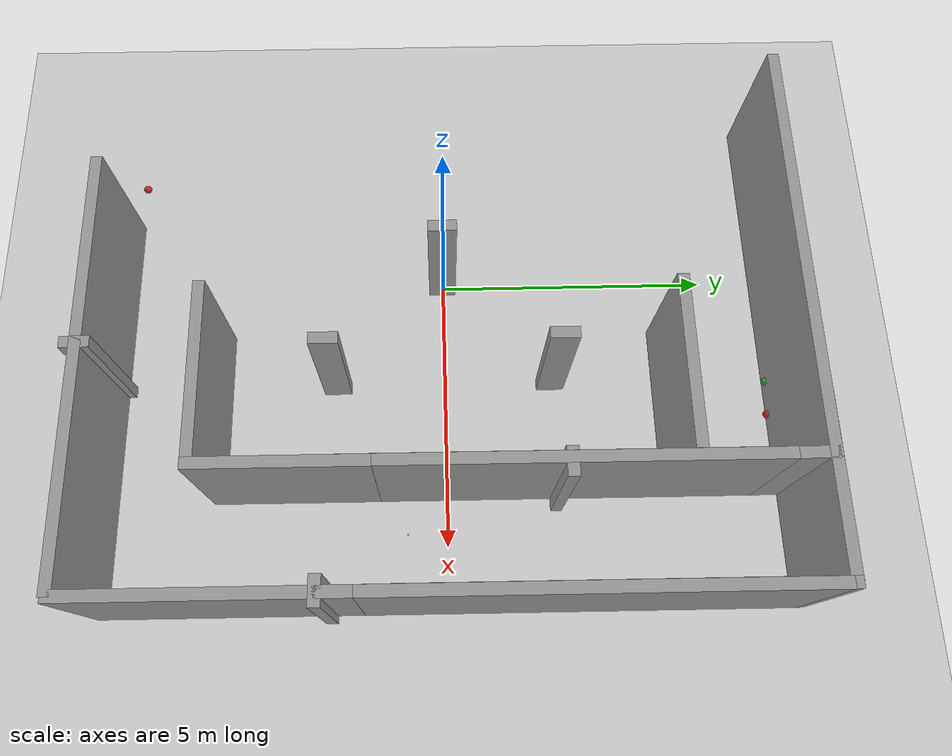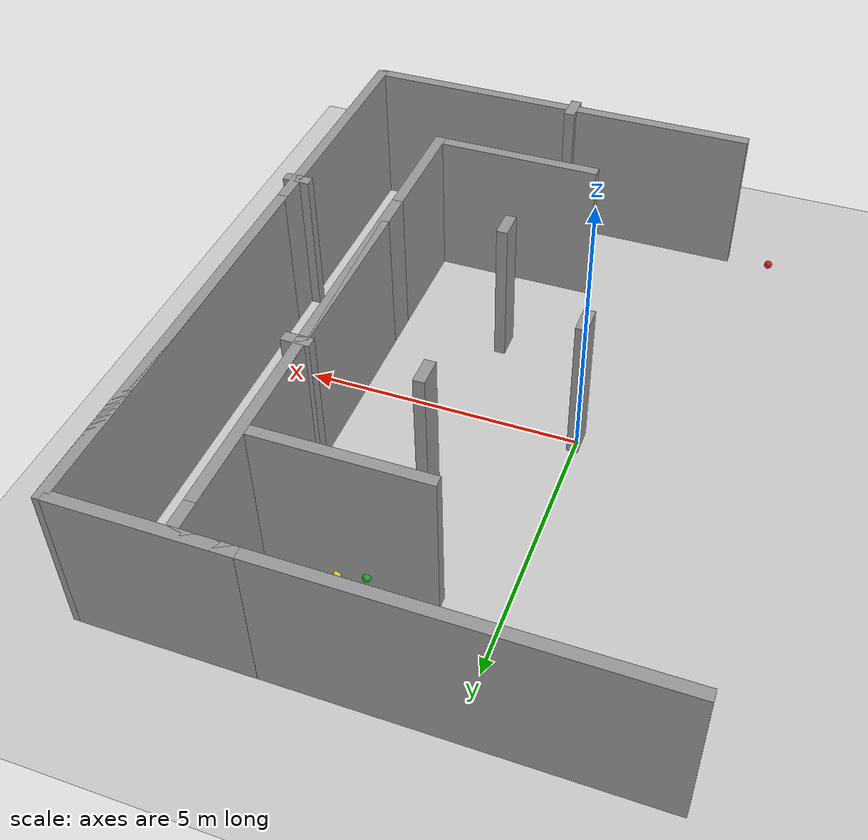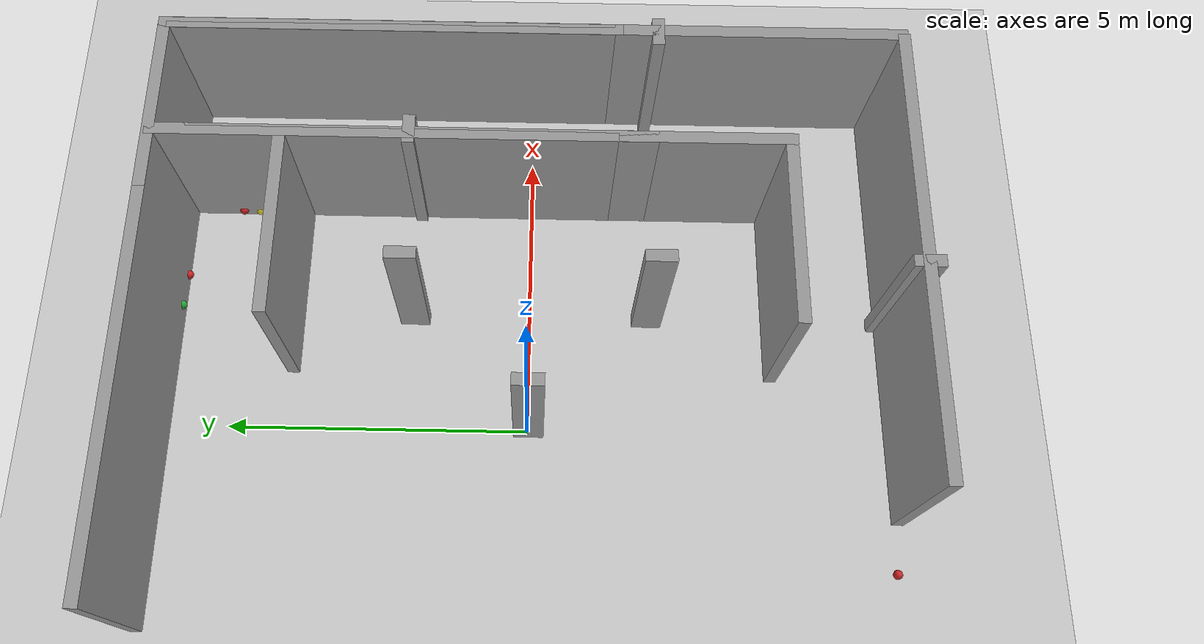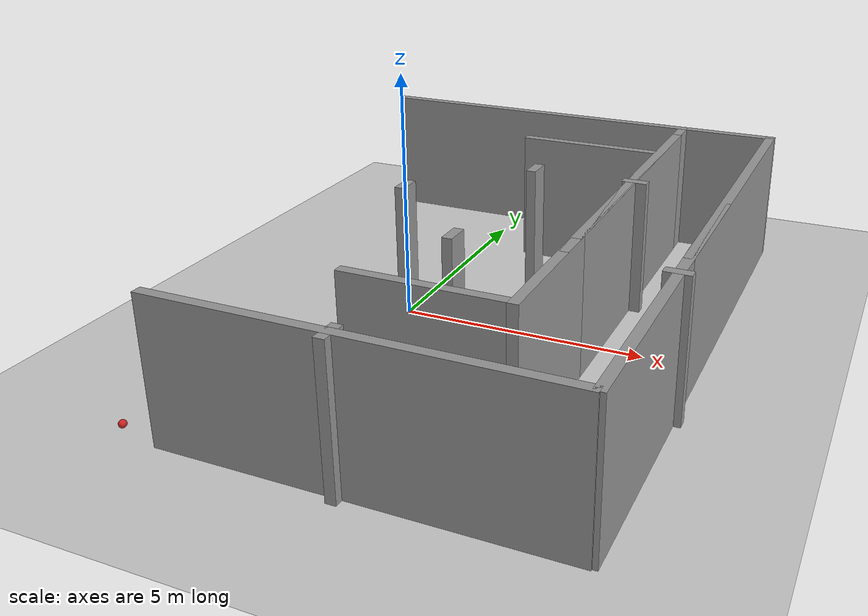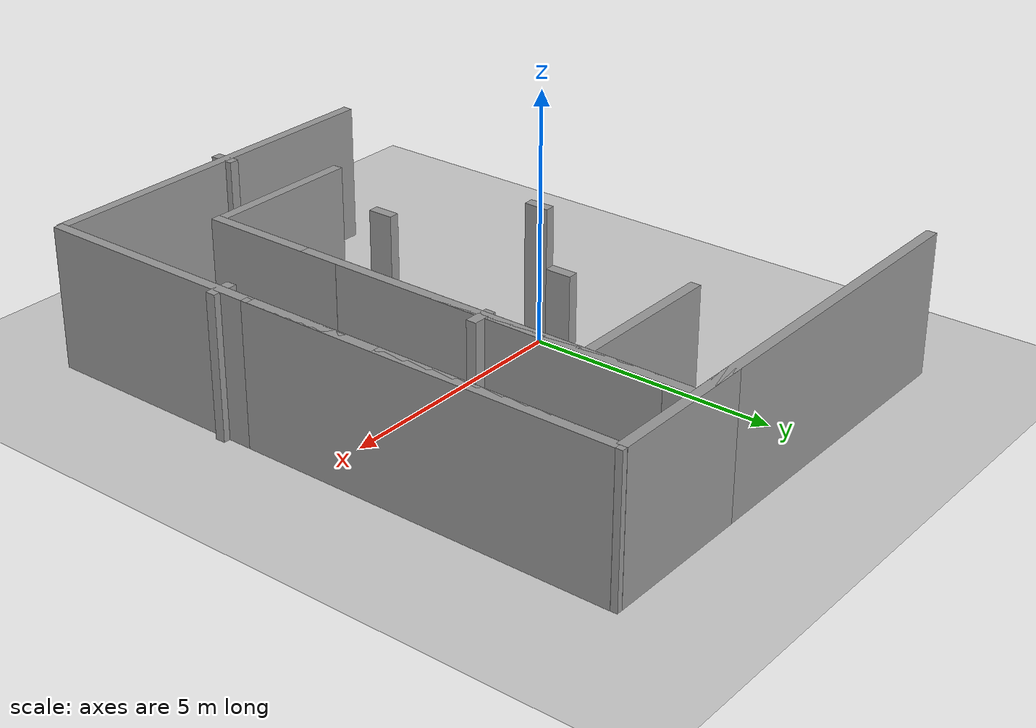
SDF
<sdf version="1.6">
 <world name="default">
  <model name="ground_plane">
   <static>1</static>
   <link name="link">
    <collision name="collision">
     <geometry><plane><normal>0 0 1</normal><size>100 100</size></plane></geometry>
     <surface>
      <contact><collide_bitmask>65535</collide_bitmask></contact>
      <friction><ode><mu>100</mu><mu2>50</mu2></ode></friction>
     </surface>
    </collision>
    <visual name="visual">
     <cast_shadows>0</cast_shadows>
     <geometry><plane><normal>0 0 1</normal><size>100 100</size></plane></geometry>
     <material>
      <script><uri>file://media/materials/scripts/gazebo.material</uri><name>Gazebo/Grey</name></script>
     </material>
    </visual>
   </link>
  </model>
  <model name="grey_wall_1">
   <static>1</static>
   <link name="link">
    <pose>0 0 1.4 0 -0 0</pose>
    <collision name="collision"><geometry><box><size>7.5 0.2 2.8</size></box></geometry></collision>
    <visual name="visual">
     <cast_shadows>0</cast_shadows>
     <geometry><box><size>7.5 0.2 2.8</size></box></geometry>
     <material>
      <script>
       <uri>model://grey_wall/materials/scripts</uri>
       <uri>model://grey_wall/materials/textures</uri>
       <name>vrc/grey_wall</name>
      </script>
     </material>
    </visual>
   </link>
   <pose>4.06703 1.74861 0 0 -0 1.57</pose>
  </model>
  <model name="grey_wall_clone_clone_clone_0">
   <static>1</static>
   <link name="link">
    <pose>0 0 1.4 0 -0 0</pose>
    <collision name="collision"><geometry><box><size>7.5 0.2 2.8</size></box></geometry></collision>
    <visual name="visual">
     <cast_shadows>0</cast_shadows>
     <geometry><box><size>7.5 0.2 2.8</size></box></geometry>
     <material>
      <script>
       <uri>model://grey_wall/materials/scripts</uri>
       <uri>model://grey_wall/materials/textures</uri>
       <name>vrc/grey_wall</name>
      </script>
     </material>
    </visual>
   </link>
   <pose>2.3111 -6.03619 0 0 -0 0</pose>
  </model>
  <model name="grey_wall_1_clone_0">
   <static>1</static>
   <link name="link">
    <pose>0 0 1.4 0 -0 0</pose>
    <collision name="collision"><geometry><box><size>7.5 0.2 2.8</size></box></geometry></collision>
    <visual name="visual">
     <cast_shadows>0</cast_shadows>
     <geometry><box><size>7.5 0.2 2.8</size></box></geometry>
     <material>
      <script>
       <uri>model://grey_wall/materials/scripts</uri>
       <uri>model://grey_wall/materials/textures</uri>
       <name>vrc/grey_wall</name>
      </script>
     </material>
    </visual>
   </link>
   <pose>6.05369 -2.35434 0 0 -0 1.57</pose>
  </model>
  <model name="grey_wall_1_clone_1">
   <static>1</static>
   <link name="link">
    <pose>0 0 1.4 0 -0 0</pose>
    <collision name="collision"><geometry><box><size>7.5 0.2 2.8</size></box></geometry></collision>
    <visual name="visual">
     <cast_shadows>0</cast_shadows>
     <geometry><box><size>7.5 0.2 2.8</size></box></geometry>
     <material>
      <script>
       <uri>model://grey_wall/materials/scripts</uri>
       <uri>model://grey_wall/materials/textures</uri>
       <name>vrc/grey_wall</name>
      </script>
     </material>
    </visual>
   </link>
   <pose>6.05862 2.29556 0 0 -0 1.57</pose>
  </model>
  <model name="grey_wall_0_clone">
   <static>1</static>
   <link name="link">
    <pose>0 0 1.4 0 -0 0</pose>
    <collision name="collision"><geometry><box><size>7.5 0.2 2.8</size></box></geometry></collision>
    <visual name="visual">
     <cast_shadows>0</cast_shadows>
     <geometry><box><size>7.5 0.2 2.8</size></box></geometry>
     <material>
      <script>
       <uri>model://grey_wall/materials/scripts</uri>
       <uri>model://grey_wall/materials/textures</uri>
       <name>vrc/grey_wall</name>
      </script>
     </material>
    </visual>
   </link>
   <pose>0.395945 6.07878 0 0 -0 0</pose>
  </model>
  <model name="grey_wall_1_clone_2">
   <static>1</static>
   <link name="link">
    <pose>0 0 1.4 0 -0 0</pose>
    <collision name="collision"><geometry><box><size>7.5 0.2 2.8</size></box></geometry></collision>
    <visual name="visual">
     <cast_shadows>0</cast_shadows>
     <geometry><box><size>7.5 0.2 2.8</size></box></geometry>
     <material>
      <script>
       <uri>model://grey_wall/materials/scripts</uri>
       <uri>model://grey_wall/materials/textures</uri>
       <name>vrc/grey_wall</name>
      </script>
     </material>
    </visual>
   </link>
   <pose>4.06582 2.38886 0 0 -0 1.57</pose>
  </model>
  <model name="grey_wall_1_clone_1_clone">
   <static>1</static>
   <link name="link">
    <pose>0 0 1.4 0 -0 0</pose>
    <collision name="collision"><geometry><box><size>7.5 0.2 2.8</size></box></geometry></collision>
    <visual name="visual">
     <cast_shadows>0</cast_shadows>
     <geometry><box><size>7.5 0.2 2.8</size></box></geometry>
     <material>
      <script>
       <uri>model://grey_wall/materials/scripts</uri>
       <uri>model://grey_wall/materials/textures</uri>
       <name>vrc/grey_wall</name>
      </script>
     </material>
    </visual>
   </link>
   <pose>6.05464 2.42889 0 0 -0 1.57</pose>
  </model>
  <model name="grey_wall_0_clone_1">
   <static>1</static>
   <link name="link">
    <pose>0 0 1.4 0 -0 0</pose>
    <collision name="collision"><geometry><box><size>3 0.2 2.8</size></box></geometry></collision>
    <visual name="visual">
     <cast_shadows>0</cast_shadows>
     <geometry><box><size>3 0.2 2.8</size></box></geometry>
     <material>
      <script>
       <uri>model://grey_wall/materials/scripts</uri>
       <uri>model://grey_wall/materials/textures</uri>
       <name>vrc/grey_wall</name>
      </script>
     </material>
    </visual>
   </link>
   <pose>2.48128 3.99569 0 0 -0 0</pose>
  </model>
  <model name="grey_wall_0_clone_3_clone_0">
   <static>1</static>
   <link name="link">
    <pose>0 0 1.4 0 -0 0</pose>
    <collision name="collision"><geometry><box><size>3 0.2 2.8</size></box></geometry></collision>
    <visual name="visual">
     <cast_shadows>0</cast_shadows>
     <geometry><box><size>3 0.2 2.8</size></box></geometry>
     <material>
      <script>
       <uri>model://grey_wall/materials/scripts</uri>
       <uri>model://grey_wall/materials/textures</uri>
       <name>vrc/grey_wall</name>
      </script>
     </material>
    </visual>
   </link>
   <pose>4.54341 6.08137 0 0 -0 0</pose>
  </model>
  <model name="grey_wall_0_clone_5">
   <static>1</static>
   <link name="link">
    <pose>0 0 1.4 0 -0 0</pose>
    <collision name="collision"><geometry><box><size>3 0.2 2.8</size></box></geometry></collision>
    <visual name="visual">
     <cast_shadows>0</cast_shadows>
     <geometry><box><size>3 0.2 2.8</size></box></geometry>
     <material>
      <script>
       <uri>model://grey_wall/materials/scripts</uri>
       <uri>model://grey_wall/materials/textures</uri>
       <name>vrc/grey_wall</name>
      </script>
     </material>
    </visual>
   </link>
   <pose>4.06538 -2.69307 0 0 -0 1.57</pose>
  </model>
  <model name="grey_wall_0_clone_3_clone_2">
   <static>1</static>
   <link name="link">
    <pose>0 0 1.4 0 -0 0</pose>
    <collision name="collision"><geometry><box><size>3 0.2 2.8</size></box></geometry></collision>
    <visual name="visual">
     <cast_shadows>0</cast_shadows>
     <geometry><box><size>3 0.2 2.8</size></box></geometry>
     <material>
      <script>
       <uri>model://grey_wall/materials/scripts</uri>
       <uri>model://grey_wall/materials/textures</uri>
       <name>vrc/grey_wall</name>
      </script>
     </material>
    </visual>
   </link>
   <pose>2.4664 -4.08853 0 0 -0 0</pose>
  </model>
  <model name="grey_wall_0_clone_7">
   <static>1</static>
   <link name="link">
    <pose>0 0 1.4 0 -0 0</pose>
    <collision name="collision"><geometry><box><size>0.5 0.2 2.8</size></box></geometry></collision>
    <visual name="visual">
     <cast_shadows>0</cast_shadows>
     <geometry><box><size>0.5 0.2 2.8</size></box></geometry>
     <material>
      <script>
       <uri>model://grey_wall/materials/scripts</uri>
       <uri>model://grey_wall/materials/textures</uri>
       <name>vrc/grey_wall</name>
      </script>
     </material>
    </visual>
   </link>
   <pose>1.99538 1.96777 0 0 -0 1.57</pose>
  </model>
  <model name="grey_wall_0_clone_9">
   <static>1</static>
   <link name="link">
    <pose>0 0 1.4 0 -0 0</pose>
    <collision name="collision"><geometry><box><size>0.5 0.2 2.8</size></box></geometry></collision>
    <visual name="visual">
     <cast_shadows>0</cast_shadows>
     <geometry><box><size>0.5 0.2 2.8</size></box></geometry>
     <material>
      <script>
       <uri>model://grey_wall/materials/scripts</uri>
       <uri>model://grey_wall/materials/textures</uri>
       <name>vrc/grey_wall</name>
      </script>
     </material>
    </visual>
   </link>
   <pose>2.01899 -2.0014 0 0 -0 1.57</pose>
  </model>
  <model name="grey_wall_0_clone_10">
   <static>1</static>
   <link name="link">
    <pose>0 0 1.4 0 -0 0</pose>
    <collision name="collision"><geometry><box><size>0.5 0.2 2.8</size></box></geometry></collision>
    <visual name="visual">
     <cast_shadows>0</cast_shadows>
     <geometry><box><size>0.5 0.2 2.8</size></box></geometry>
     <material>
      <script>
       <uri>model://grey_wall/materials/scripts</uri>
       <uri>model://grey_wall/materials/textures</uri>
       <name>vrc/grey_wall</name>
      </script>
     </material>
    </visual>
   </link>
   <pose>0.016514 -0.016119 0 0 -0 1.57</pose>
  </model>
  <model name="grey_wall_0_clone_11_clone_0">
   <static>1</static>
   <link name="link">
    <pose>0 0 1.4 0 -0 0</pose>
    <collision name="collision"><geometry><box><size>0.5 0.2 2.8</size></box></geometry></collision>
    <visual name="visual">
     <cast_shadows>0</cast_shadows>
     <geometry><box><size>0.5 0.2 2.8</size></box></geometry>
     <material>
      <script>
       <uri>model://grey_wall/materials/scripts</uri>
       <uri>model://grey_wall/materials/textures</uri>
       <name>vrc/grey_wall</name>
      </script>
     </material>
    </visual>
   </link>
   <pose>4.13772 1.95907 0 0 0 -0.004824</pose>
  </model>
  <model name="grey_wall_0_clone_11_clone_1">
   <static>1</static>
   <link name="link">
    <pose>0 0 1.4 0 -0 0</pose>
    <collision name="collision"><geometry><box><size>0.5 0.2 2.8</size></box></geometry></collision>
    <visual name="visual">
     <cast_shadows>0</cast_shadows>
     <geometry><box><size>0.5 0.2 2.8</size></box></geometry>
     <material>
      <script>
       <uri>model://grey_wall/materials/scripts</uri>
       <uri>model://grey_wall/materials/textures</uri>
       <name>vrc/grey_wall</name>
      </script>
     </material>
    </visual>
   </link>
   <pose>6.03534 -2.0287 0 0 0 -0.004824</pose>
  </model>
  <model name="grey_wall_0_clone_13">
   <static>1</static>
   <link name="link">
    <pose>0 0 1.4 0 -0 0</pose>
    <collision name="collision"><geometry><box><size>0.5 0.2 2.8</size></box></geometry></collision>
    <visual name="visual">
     <cast_shadows>0</cast_shadows>
     <geometry><box><size>0.5 0.2 2.8</size></box></geometry>
     <material>
      <script>
       <uri>model://grey_wall/materials/scripts</uri>
       <uri>model://grey_wall/materials/textures</uri>
       <name>vrc/grey_wall</name>
      </script>
     </material>
    </visual>
   </link>
   <pose>2.01595 -6.0482 0 0 -0 1.57</pose>
  </model>
  <model name="traffic_light_yellow">
   <pose>6.73682 0.588587 0 0 0 -1.5708</pose>
   <link name="traffic_light_yellow">
    <collision name="collision">
     <pose>1.3 -1.95 0.09 0 -0 0</pose>
     <geometry><sphere><radius>0.015</radius></sphere></geometry>
    </collision>
    <visual name="visual">
     <pose>1.3 -1.95 0.09 0 -0 0</pose>
     <geometry><sphere><radius>0.015</radius></sphere></geometry>
     <material>
      <script><name>Gazebo/Yellow</name><uri>file://media/materials/scripts/gazebo.material</uri></script>
     </material>
    </visual>
   </link>
   <static>1</static>
  </model>
  <model name="traffic_light_red_clone_clone">
   <pose>-0.302523 -4.6339 0 0 0 -1.5708</pose>
   <link name="traffic_light_red">
    <collision name="collision">
     <pose>1.3 -1.95 0.13 0 -0 0</pose>
     <geometry><sphere><radius>0.075</radius></sphere></geometry>
    </collision>
    <visual name="visual">
     <pose>1.3 -1.95 0.13 0 -0 0</pose>
     <geometry><sphere><radius>0.075</radius></sphere></geometry>
     <material>
      <script><name>Gazebo/Red</name><uri>file://media/materials/scripts/gazebo.material</uri></script>
     </material>
    </visual>
   </link>
   <static>1</static>
  </model>
  <model name="traffic_light_red_clone_clone_1">
   <pose>5.91794 6.44017 0 0 0 -1.5708</pose>
   <link name="traffic_light_red">
    <collision name="collision">
     <pose>1.3 -1.95 0.13 0 -0 0</pose>
     <geometry><sphere><radius>0.075</radius></sphere></geometry>
    </collision>
    <visual name="visual">
     <pose>1.3 -1.95 0.13 0 -0 0</pose>
     <geometry><sphere><radius>0.075</radius></sphere></geometry>
     <material>
      <script><name>Gazebo/Red</name><uri>file://media/materials/scripts/gazebo.material</uri></script>
     </material>
    </visual>
   </link>
   <static>1</static>
  </model>
  <model name="traffic_light_red_clone_clone_2">
   <pose>4.64254 7.26813 0 0 0 -1.5708</pose>
   <link name="traffic_light_red">
    <collision name="collision">
     <pose>1.3 -1.95 0.13 0 -0 0</pose>
     <geometry><sphere><radius>0.075</radius></sphere></geometry>
    </collision>
    <visual name="visual">
     <pose>1.3 -1.95 0.13 0 -0 0</pose>
     <geometry><sphere><radius>0.075</radius></sphere></geometry>
     <material>
      <script><name>Gazebo/Red</name><uri>file://media/materials/scripts/gazebo.material</uri></script>
     </material>
    </visual>
   </link>
   <static>1</static>
  </model>
  <model name="traffic_light_yellow_clone_clone_clone">
   <pose>5.93952 6.15295 0 0 0 -1.5708</pose>
   <link name="traffic_light_yellow">
    <collision name="collision">
     <pose>1.3 -1.95 0.09 0 -0 0</pose>
     <geometry><sphere><radius>0.075</radius></sphere></geometry>
    </collision>
    <visual name="visual">
     <pose>1.3 -1.95 0.09 0 -0 0</pose>
     <geometry><sphere><radius>0.075</radius></sphere></geometry>
     <material>
      <script><name>Gazebo/Yellow</name><uri>file://media/materials/scripts/gazebo.material</uri></script>
     </material>
    </visual>
   </link>
   <static>1</static>
  </model>
  <model name="traffic_light_yellow_clone_clone_clone_0">
   <pose>4.64917 5.39347 0 0 0 -1.5708</pose>
   <link name="traffic_light_yellow">
    <collision name="collision">
     <pose>1.3 -1.95 0.09 0 -0 0</pose>
     <geometry><sphere><radius>0.075</radius></sphere></geometry>
    </collision>
    <visual name="visual">
     <pose>1.3 -1.95 0.09 0 -0 0</pose>
     <geometry><sphere><radius>0.075</radius></sphere></geometry>
     <material>
      <script><name>Gazebo/Yellow</name><uri>file://media/materials/scripts/gazebo.material</uri></script>
     </material>
    </visual>
   </link>
   <static>1</static>
  </model>
  <model name="traffic_light_green_clone_clone_0_clone">
   <pose>4.13079 5.40095 0.187993 0 0 -1.5708</pose>
   <link name="traffic_light_green">
    <collision name="collision">
     <pose>1.3 -1.95 0.05 0 -0 0</pose>
     <geometry><sphere><radius>0.075</radius></sphere></geometry>
    </collision>
    <visual name="visual">
     <pose>1.3 -1.95 0.05 0 -0 0</pose>
     <geometry><sphere><radius>0.075</radius></sphere></geometry>
     <material>
      <script><name>Gazebo/Green</name><uri>file://media/materials/scripts/gazebo.material</uri></script>
     </material>
    </visual>
   </link>
   <static>1</static>
  </model>
  <model name="traffic_light_green_clone_clone_0_clone_0">
   <pose>4.03413 7.27078 0.187993 0 0 -1.5708</pose>
   <link name="traffic_light_green">
    <collision name="collision">
     <pose>1.3 -1.95 0.05 0 -0 0</pose>
     <geometry><sphere><radius>0.075</radius></sphere></geometry>
    </collision>
    <visual name="visual">
     <pose>1.3 -1.95 0.05 0 -0 0</pose>
     <geometry><sphere><radius>0.075</radius></sphere></geometry>
     <material>
      <script><name>Gazebo/Green</name><uri>file://media/materials/scripts/gazebo.material</uri></script>
     </material>
    </visual>
   </link>
   <static>1</static>
  </model>
 </world>
</sdf>
